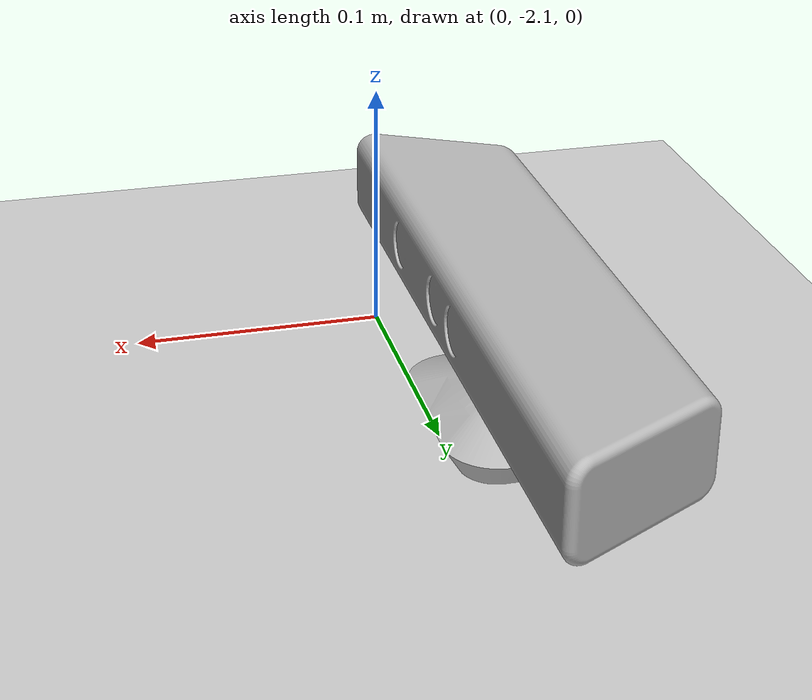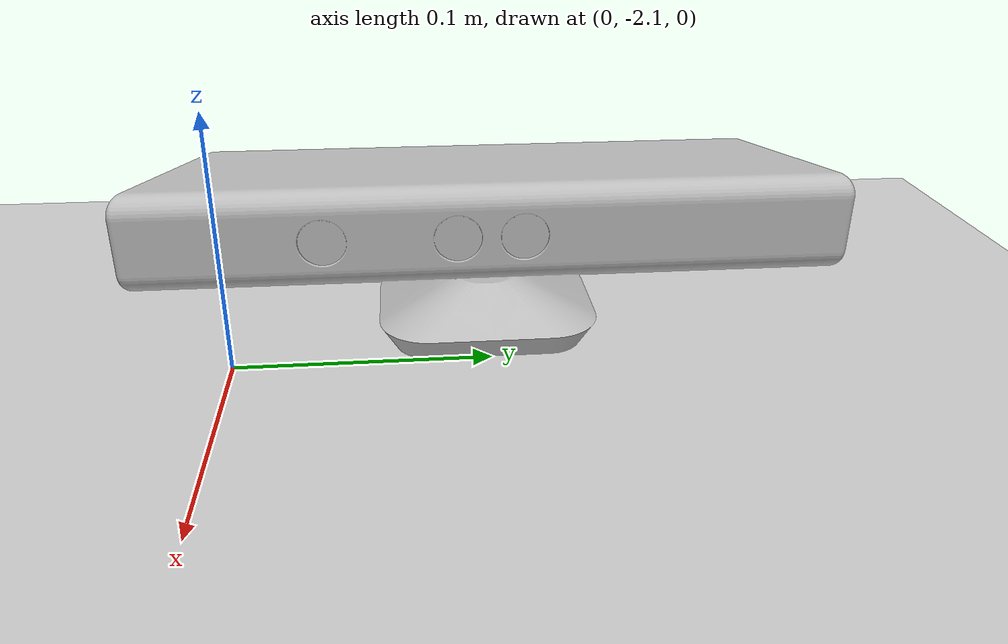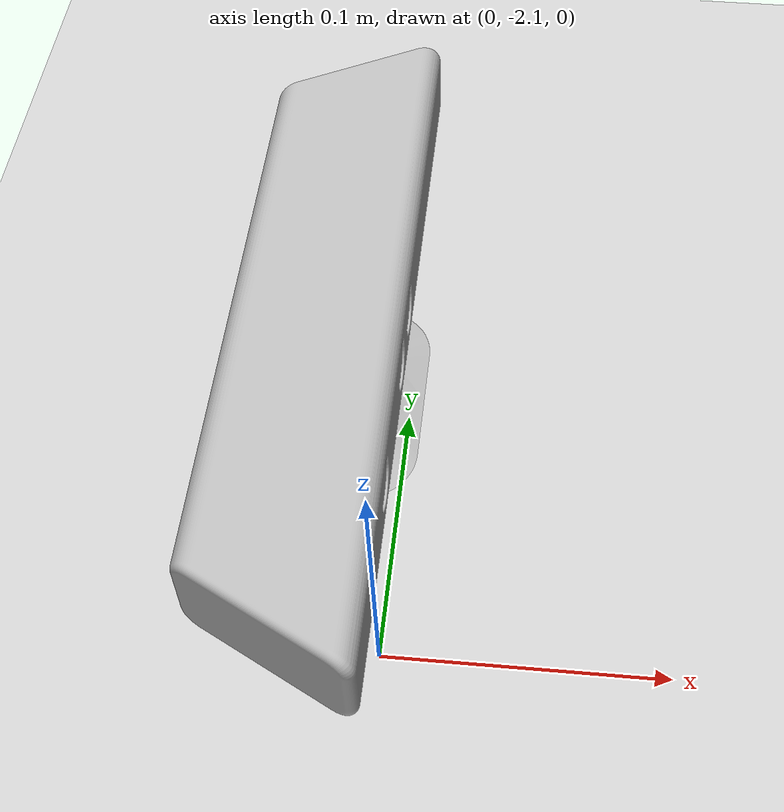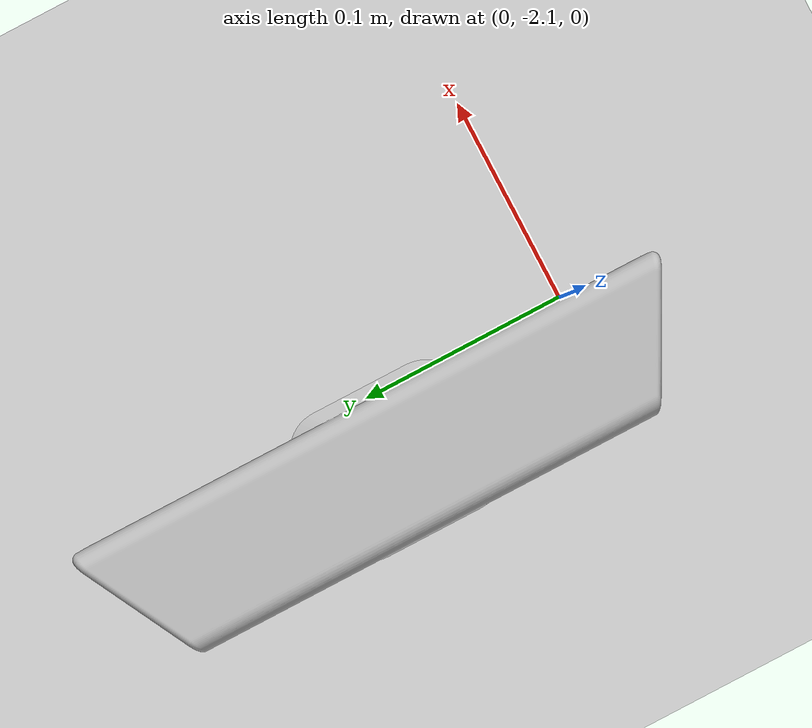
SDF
<?xml version="1.0" ?>
<sdf version="1.4">
  <world name="default">
    <include>
      <uri>model://ground_plane</uri>
    </include>

    <include>
      <uri>model://sun</uri>
    </include>

<!--tentiamo di usare un kinect-->
<model name='kinect'>
  <pose>0 -2 0.05 0 0 0</pose>
  <link name='kinect_link'>
    <inertial>
      <mass>0.1</mass>
      <inertia>
        <ixx>1</ixx>
        <ixy>0</ixy>
        <ixz>0</ixz>
        <iyy>1</iyy>
        <iyz>0</iyz>
        <izz>1</izz>
      </inertia>
    </inertial>
    <collision name='collision'>
      <geometry>
        <box>
          <size>0.1 0.1 0.1</size>
        </box>
      </geometry>
      <max_contacts>10</max_contacts>
      <surface>
        <contact>
          <ode/>
        </contact>
        <bounce/>
        <friction>
          <ode/>
        </friction>
      </surface>
    </collision>
    <visual name='visual'>
      <geometry>
        <mesh>
          <uri>model://kinect/meshes/kinect.dae</uri>
        </mesh>
      </geometry>
    </visual>
    <sensor name='camera_kinect' type='depth'>
      <camera name='kinect_1'>
        <horizontal_fov>1.047</horizontal_fov>
        <image>
          <width>320</width>
          <height>240</height>
        </image>
        <clip>
          <near>0.1</near>
          <far>100</far>
        </clip>
      </camera>
      <plugin name="kinect_plugin" filename="libgazebo_ros_openni_kinect.so">
        <cameraName>camera_kinect</cameraName>
        <alwaysOn>true</alwaysOn>
        <updateRate>1.0</updateRate>
        <imageTopicName>rgb/image_raw</imageTopicName>
        <depthImageTopicName>depth/image_raw</depthImageTopicName>
        <pointCloudTopicName>depth/points</pointCloudTopicName>
        <cameraInfoTopicName>rgb/camera_info</cameraInfoTopicName>
        <depthImageCameraInfoTopicName>depth/camera_info</depthImageCameraInfoTopicName>
        <frameName>camera_depth_optical_frame</frameName>
        <baseline>0.2</baseline>
        <distortion_k1>0.000000001</distortion_k1>
        <distortion_k2>0.000000001</distortion_k2>
        <distortion_k3>0.000000001</distortion_k3>
        <distortion_t1>0.000000001</distortion_t1>
        <distortion_t2>0.000000001</distortion_t2>
        <pointCloudCutoff>0.4</pointCloudCutoff>
        <pointCloudCutoffMax>5.0</pointCloudCutoffMax>
        <CxPrime>0</CxPrime>
        <Cx>0</Cx>
        <Cy>0</Cy>
        <focalLength>0</focalLength>
        <hackBaseline>0</hackBaseline>
        <robotNamespace>/</robotNamespace>
      </plugin>
    </sensor>
    <self_collide>0</self_collide>
    <kinematic>0</kinematic>
    <gravity>1</gravity>
  </link>
</model>

    <physics type="ode">
      <real_time_update_rate>1000.0</real_time_update_rate>
      <gravity>
	0.0 0.0 -9.81
      </gravity>
    </physics>
  </world>
</sdf>
